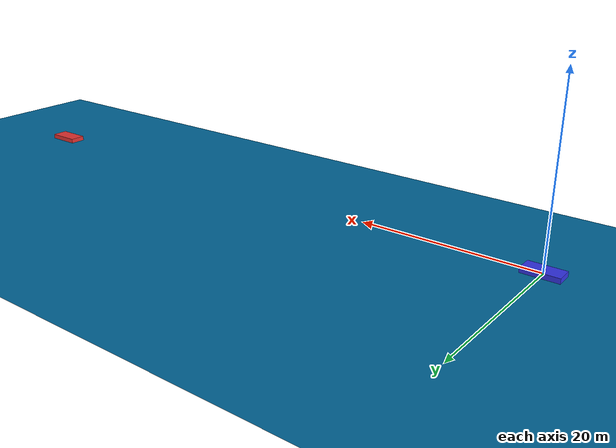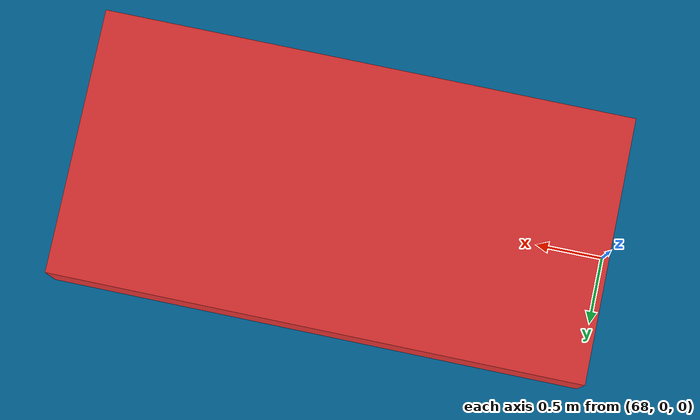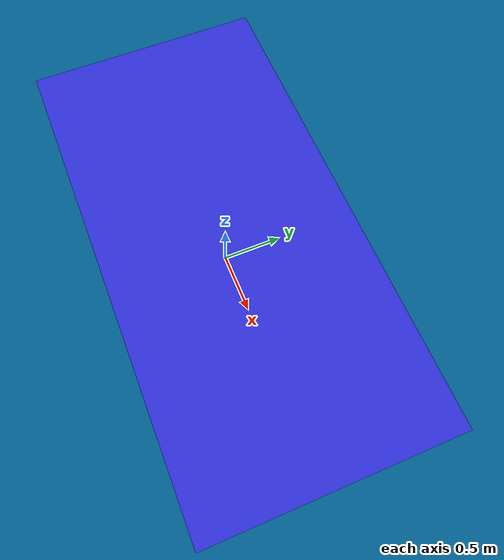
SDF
<?xml version="1.0"?>
<sdf version="1.10">
  <world name="colav_demo">
    <physics name="fast" type="ignored">
      <max_step_size>0.01</max_step_size>
      <real_time_factor>1.0</real_time_factor>
    </physics>
    <gravity>0 0 0</gravity>

    <plugin filename="gz-sim-physics-system"
            name="gz::sim::systems::Physics"/>
    <plugin filename="gz-sim-user-commands-system"
            name="gz::sim::systems::UserCommands"/>
    <plugin filename="gz-sim-scene-broadcaster-system"
            name="gz::sim::systems::SceneBroadcaster"/>

    <light type="directional" name="sun">
      <direction>-0.5 0.1 -0.9</direction>
      <diffuse>1 1 1 1</diffuse>
      <specular>0.2 0.2 0.2 1</specular>
    </light>

    <model name="water" >
      <static>true</static>
      <link name="surface">
        <visual name="v">
          <geometry><plane><normal>0 0 1</normal><size>2000 2000</size></plane></geometry>
          <material><ambient>0.0 0.3 0.5 1</ambient><diffuse>0.0 0.4 0.6 1</diffuse></material>
        </visual>
      </link>
    </model>

    <model name="ego_vessel">
      <pose>0 0 0 0 0 0</pose>
      <link name="base">
        <inertial>
          <mass>50.0</mass>
          <inertia><ixx>40</ixx><iyy>120</iyy><izz>140</izz>
                   <ixy>0</ixy><ixz>0</ixz><iyz>0</iyz></inertia>
        </inertial>
        <visual name="hull">
          <geometry><box><size>4 2 1</size></box></geometry>
          <material><ambient>0.1 0.1 0.7 1</ambient><diffuse>0.2 0.2 0.9 1</diffuse></material>
        </visual>
        <collision name="c">
          <geometry><box><size>4 2 1</size></box></geometry>
        </collision>
      </link>
      <plugin filename="gz-sim-velocity-control-system"
              name="gz::sim::systems::VelocityControl">
        <topic>/model/ego_vessel/cmd_vel</topic>
      </plugin>
      <plugin filename="gz-sim-odometry-publisher-system"
              name="gz::sim::systems::OdometryPublisher">
        <dimensions>2</dimensions>
        <odom_frame>map</odom_frame>
        <robot_base_frame>ego_vessel</robot_base_frame>
        <odom_topic>/model/ego_vessel/odometry</odom_topic>
        <odom_publish_frequency>50</odom_publish_frequency>
      </plugin>
    </model>

    <model name="obstacle">
      <pose>70 0 0 0 0 3.14159265</pose>
      <link name="base">
        <inertial>
          <mass>50.0</mass>
          <inertia><ixx>40</ixx><iyy>120</iyy><izz>140</izz>
                   <ixy>0</ixy><ixz>0</ixz><iyz>0</iyz></inertia>
        </inertial>
        <visual name="hull">
          <geometry><box><size>4 2 1</size></box></geometry>
          <material><ambient>0.7 0.1 0.1 1</ambient><diffuse>0.9 0.2 0.2 1</diffuse></material>
        </visual>
        <collision name="c">
          <geometry><box><size>4 2 1</size></box></geometry>
        </collision>
      </link>
      <plugin filename="gz-sim-velocity-control-system"
              name="gz::sim::systems::VelocityControl">
        <topic>/model/obstacle/cmd_vel</topic>
      </plugin>
      <plugin filename="gz-sim-odometry-publisher-system"
              name="gz::sim::systems::OdometryPublisher">
        <dimensions>2</dimensions>
        <odom_frame>map</odom_frame>
        <robot_base_frame>obstacle</robot_base_frame>
        <odom_topic>/model/obstacle/odometry</odom_topic>
        <odom_publish_frequency>50</odom_publish_frequency>
      </plugin>
    </model>
  </world>
</sdf>
